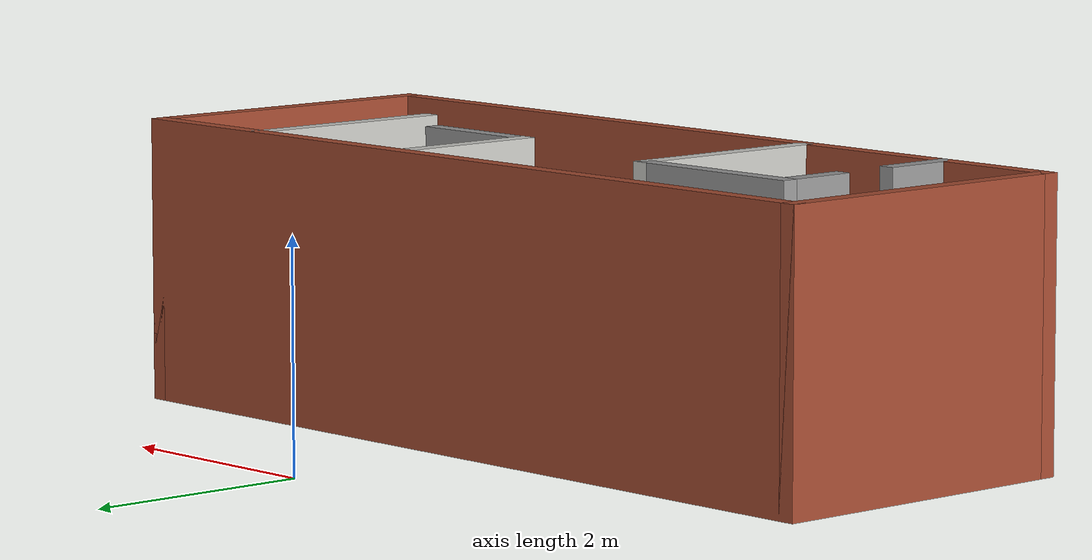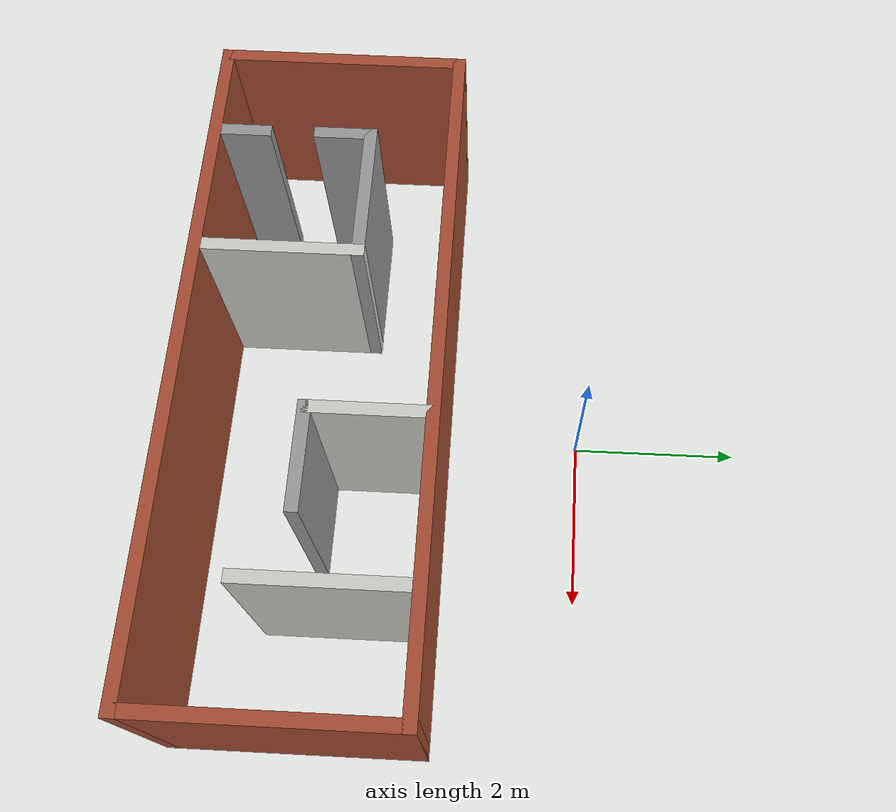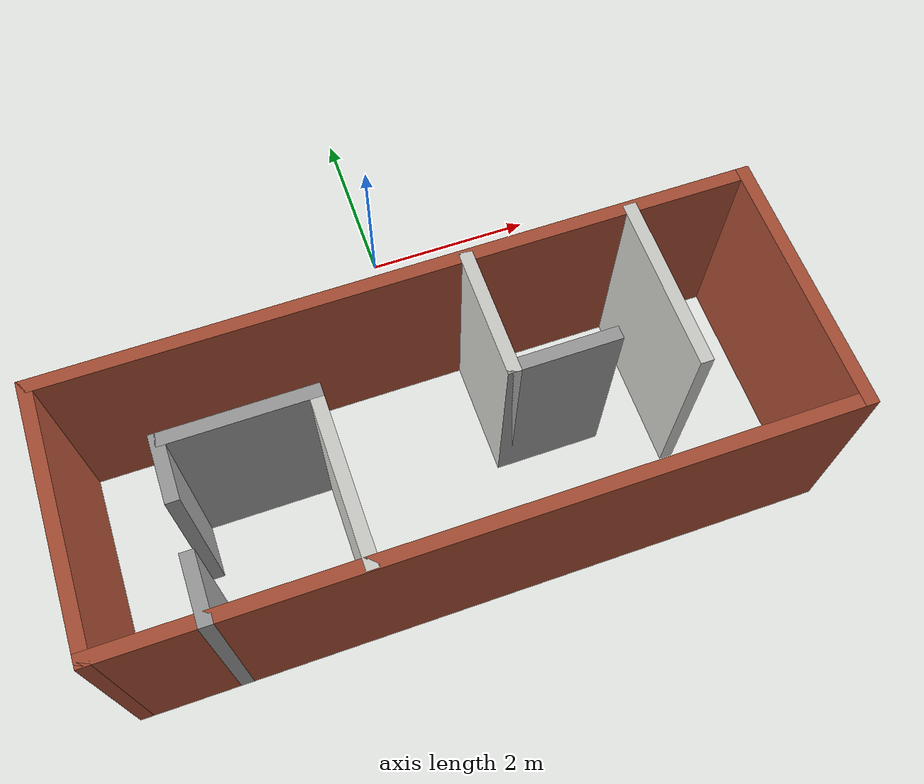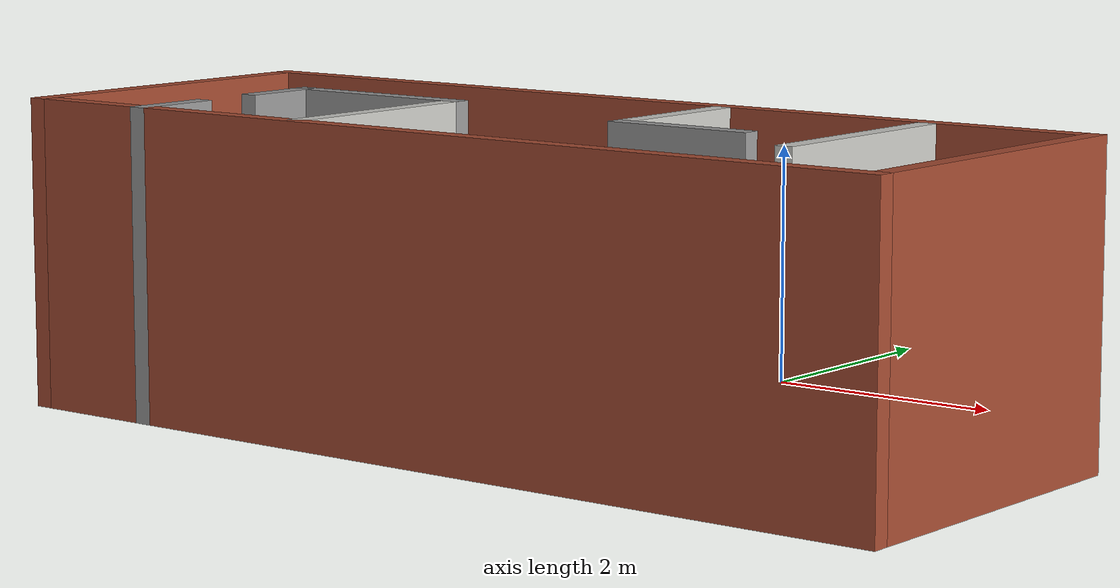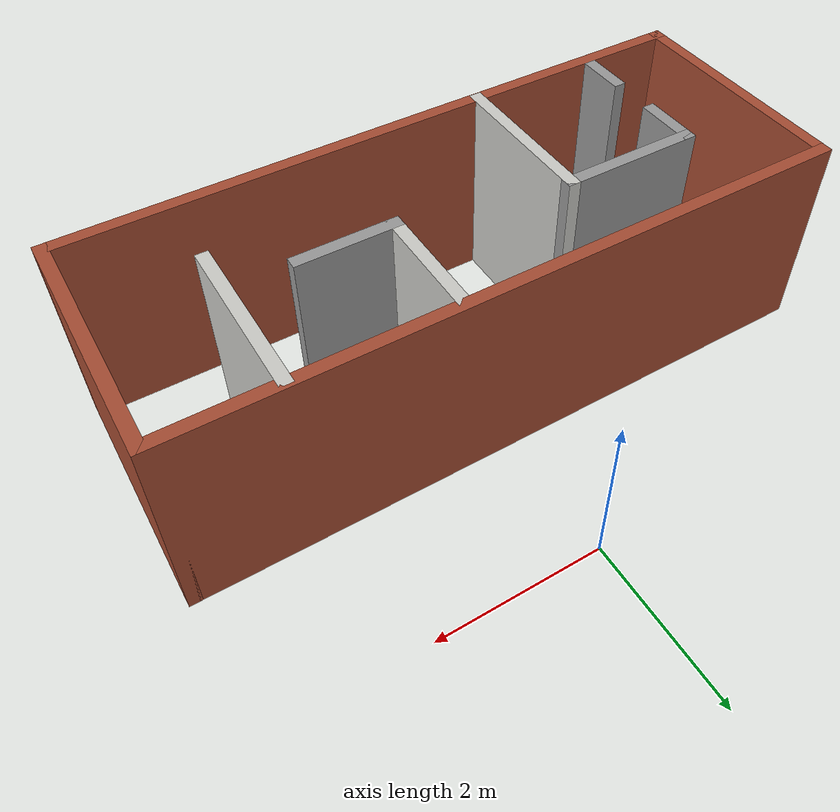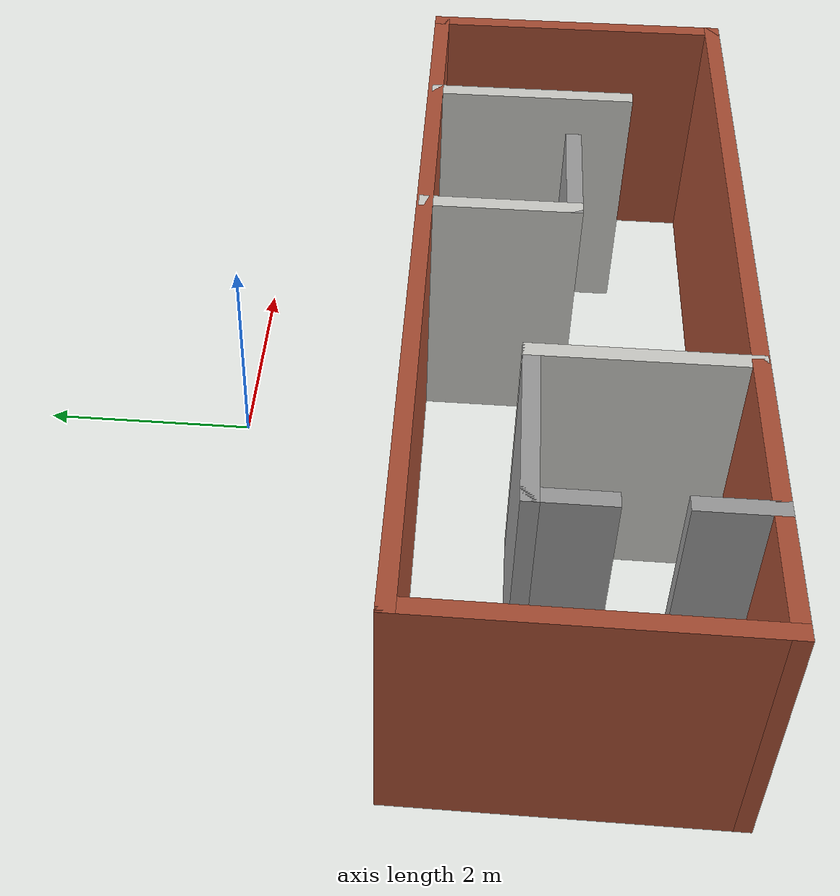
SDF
<?xml version='1.0'?>
<sdf version='1.6'>
  <model name='room1'>
    <pose frame=''>-0.115 -3.105 0 0 -0 0</pose>
    <link name='Wall_0'>
      <collision name='Wall_0_Collision'>
        <geometry>
          <box>
            <size>8 0.15 2.5</size>
          </box>
        </geometry>
        <pose frame=''>0 0 1.25 0 -0 0</pose>
      </collision>
      <visual name='Wall_0_Visual'>
        <pose frame=''>0 0 1.25 0 -0 0</pose>
        <geometry>
          <box>
            <size>8 0.15 2.5</size>
          </box>
        </geometry>
        <material>
          <script>
            <uri>file://media/materials/scripts/gazebo.material</uri>
            <name>Gazebo/Bricks</name>
          </script>
          <ambient>1 1 1 1</ambient>
        </material>
        <meta>
          <layer>0</layer>
        </meta>
      </visual>
      <pose frame=''>0 1.425 0 0 -0 0</pose>
    </link>
    <link name='Wall_1'>
      <collision name='Wall_1_Collision'>
        <geometry>
          <box>
            <size>3 0.15 2.5</size>
          </box>
        </geometry>
        <pose frame=''>0 0 1.25 0 -0 0</pose>
      </collision>
      <visual name='Wall_1_Visual'>
        <pose frame=''>0 0 1.25 0 -0 0</pose>
        <geometry>
          <box>
            <size>3 0.15 2.5</size>
          </box>
        </geometry>
        <material>
          <script>
            <uri>file://media/materials/scripts/gazebo.material</uri>
            <name>Gazebo/Bricks</name>
          </script>
          <ambient>1 1 1 1</ambient>
        </material>
        <meta>
          <layer>0</layer>
        </meta>
      </visual>
      <pose frame=''>3.925 0 0 0 -0 -1.5708</pose>
    </link>
    <link name='Wall_10'>
      <collision name='Wall_10_Collision'>
        <geometry>
          <box>
            <size>2 0.15 2.5</size>
          </box>
        </geometry>
        <pose frame=''>0 0 1.25 0 -0 0</pose>
      </collision>
      <visual name='Wall_10_Visual'>
        <pose frame=''>0 0 1.25 0 -0 0</pose>
        <geometry>
          <box>
            <size>2 0.15 2.5</size>
          </box>
        </geometry>
        <material>
          <script>
            <uri>file://media/materials/scripts/gazebo.material</uri>
            <name>Gazebo/CeilingTiled</name>
          </script>
          <ambient>1 1 1 1</ambient>
        </material>
        <meta>
          <layer>0</layer>
        </meta>
      </visual>
      <pose frame=''>-1.215 -0.49 0 0 -0 1.5708</pose>
    </link>
    <link name='Wall_14'>
      <collision name='Wall_14_Collision'>
        <geometry>
          <box>
            <size>1.75 0.15 2.5</size>
          </box>
        </geometry>
        <pose frame=''>0 0 1.25 0 -0 0</pose>
      </collision>
      <visual name='Wall_14_Visual'>
        <pose frame=''>0 0 1.25 0 -0 0</pose>
        <geometry>
          <box>
            <size>1.75 0.15 2.5</size>
          </box>
        </geometry>
        <material>
          <script>
            <uri>file://media/materials/scripts/gazebo.material</uri>
            <name>Gazebo/Grey</name>
          </script>
          <ambient>1 1 1 1</ambient>
        </material>
        <meta>
          <layer>0</layer>
        </meta>
      </visual>
      <pose frame=''>-2.015 0.435 0 0 -0 3.14159</pose>
    </link>
    <link name='Wall_15'>
      <collision name='Wall_15_Collision'>
        <geometry>
          <box>
            <size>0.75 0.15 2.5</size>
          </box>
        </geometry>
        <pose frame=''>0 0 1.25 0 -0 0</pose>
      </collision>
      <visual name='Wall_15_Visual'>
        <pose frame=''>0 0 1.25 0 -0 0</pose>
        <geometry>
          <box>
            <size>0.75 0.15 2.5</size>
          </box>
        </geometry>
        <material>
          <script>
            <uri>file://media/materials/scripts/gazebo.material</uri>
            <name>Gazebo/Grey</name>
          </script>
          <ambient>1 1 1 1</ambient>
        </material>
        <meta>
          <layer>0</layer>
        </meta>
      </visual>
      <pose frame=''>-2.815 0.135 0 0 -0 -1.5708</pose>
    </link>
    <link name='Wall_17'>
      <collision name='Wall_17_Collision'>
        <geometry>
          <box>
            <size>0.75 0.15 2.5</size>
          </box>
        </geometry>
        <pose frame=''>0 0 1.25 0 -0 0</pose>
      </collision>
      <visual name='Wall_17_Visual'>
        <pose frame=''>0 0 1.25 0 -0 0</pose>
        <geometry>
          <box>
            <size>0.75 0.15 2.5</size>
          </box>
        </geometry>
        <material>
          <script>
            <uri>file://media/materials/scripts/gazebo.material</uri>
            <name>Gazebo/Grey</name>
          </script>
          <ambient>1 1 1 1</ambient>
        </material>
        <meta>
          <layer>0</layer>
        </meta>
      </visual>
      <pose frame=''>-2.805 -1.125 0 0 -0 1.5708</pose>
    </link>
    <link name='Wall_2'>
      <collision name='Wall_2_Collision'>
        <geometry>
          <box>
            <size>8 0.15 2.5</size>
          </box>
        </geometry>
        <pose frame=''>0 0 1.25 0 -0 0</pose>
      </collision>
      <visual name='Wall_2_Visual'>
        <pose frame=''>0 0 1.25 0 -0 0</pose>
        <geometry>
          <box>
            <size>8 0.15 2.5</size>
          </box>
        </geometry>
        <material>
          <script>
            <uri>file://media/materials/scripts/gazebo.material</uri>
            <name>Gazebo/Bricks</name>
          </script>
          <ambient>1 1 1 1</ambient>
        </material>
        <meta>
          <layer>0</layer>
        </meta>
      </visual>
      <pose frame=''>0 -1.425 0 0 -0 3.14159</pose>
    </link>
    <link name='Wall_3'>
      <collision name='Wall_3_Collision'>
        <geometry>
          <box>
            <size>3 0.15 2.5</size>
          </box>
        </geometry>
        <pose frame=''>0 0 1.25 0 -0 0</pose>
      </collision>
      <visual name='Wall_3_Visual'>
        <pose frame=''>0 0 1.25 0 -0 0</pose>
        <geometry>
          <box>
            <size>3 0.15 2.5</size>
          </box>
        </geometry>
        <material>
          <script>
            <uri>file://media/materials/scripts/gazebo.material</uri>
            <name>Gazebo/Bricks</name>
          </script>
          <ambient>1 1 1 1</ambient>
        </material>
        <meta>
          <layer>0</layer>
        </meta>
      </visual>
      <pose frame=''>-3.925 0 0 0 -0 1.5708</pose>
    </link>
    <link name='Wall_5'>
      <collision name='Wall_5_Collision'>
        <geometry>
          <box>
            <size>2 0.15 2.5</size>
          </box>
        </geometry>
        <pose frame=''>0 0 1.25 0 -0 0</pose>
      </collision>
      <visual name='Wall_5_Visual'>
        <pose frame=''>0 0 1.25 0 -0 0</pose>
        <geometry>
          <box>
            <size>2 0.15 2.5</size>
          </box>
        </geometry>
        <material>
          <script>
            <uri>file://media/materials/scripts/gazebo.material</uri>
            <name>Gazebo/CeilingTiled</name>
          </script>
          <ambient>1 1 1 1</ambient>
        </material>
        <meta>
          <layer>0</layer>
        </meta>
      </visual>
      <pose frame=''>2.585 0.46 0 0 -0 -1.5708</pose>
    </link>
    <link name='Wall_7'>
      <collision name='Wall_7_Collision'>
        <geometry>
          <box>
            <size>1.5 0.15 2.5</size>
          </box>
        </geometry>
        <pose frame=''>0 0 1.25 0 -0 0</pose>
      </collision>
      <visual name='Wall_7_Visual'>
        <pose frame=''>0 0 1.25 0 -0 0</pose>
        <geometry>
          <box>
            <size>1.5 0.15 2.5</size>
          </box>
        </geometry>
        <material>
          <script>
            <uri>file://media/materials/scripts/gazebo.material</uri>
            <name>Gazebo/CeilingTiled</name>
          </script>
          <ambient>1 1 1 1</ambient>
        </material>
        <meta>
          <layer>0</layer>
        </meta>
      </visual>
      <pose frame=''>0.725 0.73 0 0 -0 -1.5708</pose>
    </link>
    <link name='Wall_8'>
      <collision name='Wall_8_Collision'>
        <geometry>
          <box>
            <size>1.25 0.15 2.5</size>
          </box>
        </geometry>
        <pose frame=''>0 0 1.25 0 -0 0</pose>
      </collision>
      <visual name='Wall_8_Visual'>
        <pose frame=''>0 0 1.25 0 -0 0</pose>
        <geometry>
          <box>
            <size>1.25 0.15 2.5</size>
          </box>
        </geometry>
        <material>
          <script>
            <uri>file://media/materials/scripts/gazebo.material</uri>
            <name>Gazebo/Grey</name>
          </script>
          <ambient>1 1 1 1</ambient>
        </material>
        <meta>
          <layer>0</layer>
        </meta>
      </visual>
      <pose frame=''>1.275 0.055 0 0 -0 0</pose>
    </link>
    <static>1</static>
  </model>
</sdf>
